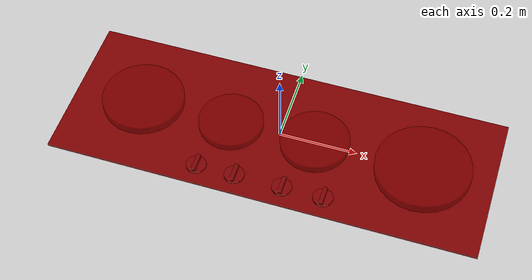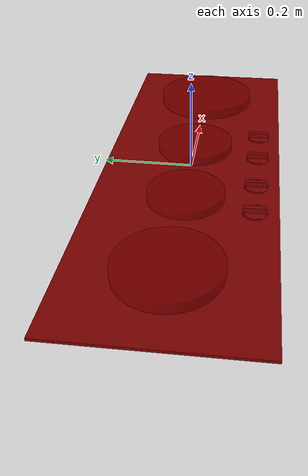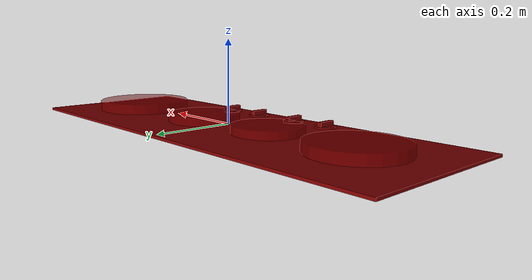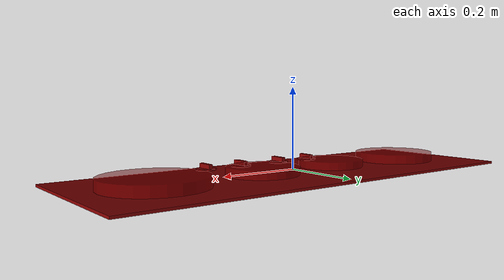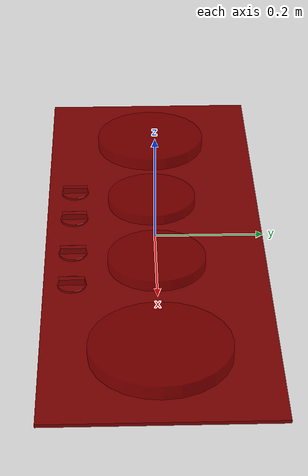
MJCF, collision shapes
<mujoco model="model">
  <compiler angle="radian"/>
  <asset>
    <mesh file="visuals/knob_center_left.obj" name="knob_center_left_vis"/>
    <mesh file="visuals/knob_center_right.obj" name="knob_center_right_vis"/>
    <mesh file="visuals/knob_left.obj" name="knob_left_vis"/>
    <mesh file="visuals/knob_right.obj" name="knob_right_vis"/>
    <mesh file="visuals/Body001.obj" name="Body001_vis"/>
    <texture file="visuals/T_BC001.png" name="Body001_material" type="2d"/>
    <material name="Body001_material" rgba="1 1 1 1.0" texture="Body001_material" shininess="3" specular="3"/>
    <texture file="visuals/T_BC001.png" name="knob_center_left_material" type="2d"/>
    <material name="knob_center_left_material" rgba="1 1 1 1.0" texture="knob_center_left_material" shininess="4" specular="4"/>
    <texture file="visuals/T_BC001.png" name="knob_center_right_material" type="2d"/>
    <material name="knob_center_right_material" rgba="1 1 1 1.0" texture="knob_center_right_material" shininess="4" specular="4"/>
    <texture file="visuals/T_BC001.png" name="knob_left_material" type="2d"/>
    <material name="knob_left_material" rgba="1 1 1 1.0" texture="knob_left_material" shininess="4" specular="4"/>
    <texture file="visuals/T_BC001.png" name="knob_right_material" type="2d"/>
    <material name="knob_right_material" rgba="1 1 1 1.0" texture="knob_right_material" shininess="4" specular="4"/>
  </asset>
  <default>
    <default class="visual">
      <geom conaffinity="0" contype="0" group="1" type="mesh"/>
    </default>
    <default class="collision">
      <geom group="0" rgba="0.5 0 0 0.5"/>
    </default>
    <default class="spawn">
      <geom group="0" rgba="1 1 1 0.5" contype="0" conaffinity="0"/>
      <site group="0" rgba="1 1 1 0.5"/>
    </default>
    <default class="region">
      <geom group="1" conaffinity="0" contype="0" rgba="0 1 0 0"/>
    </default>
  </default>
  <worldbody>
    <body>
      <body name="object">
        <site type="cylinder" rgba="0.5 0 0 0.5" size="0.08278307318687439 0.009517579339444637" pos="-0.12790930271148682 -0.0031520724296569824 0.006037903018295765" name="burner_center_left"/>
        <site type="cylinder" rgba="0.5 0 0 0.5" size="0.1055828258395195 0.012138869613409042" pos="-0.3670654296875 -0.0006356523372232914 0.006037903018295765" name="burner_on_left"/>
        <site type="cylinder" rgba="0.5 0 0 0.5" size="0.08813810348510742 0.010133247822523117" pos="0.09222501516342163 0.0008400166989304125 0.006037903018295765" name="burner_center_right"/>
        <site type="cylinder" rgba="0.5 0 0 0.5" size="0.1211986318230629 0.013934221118688583" pos="0.3691750466823578 0.00022083005751483142 0.006037903018295765" name="burner_on_right"/>
        <geom mesh="Body001_vis" type="mesh" solimp="0.998 0.998 0.001" solref="0.001 1" density="100" friction="0.95 0.3 0.1" class="visual" material="Body001_material"/>
        <geom class="collision" type="box" pos="-0.00012311333557590842 -0.0008124746382236481 -0.008074344135820866" size="0.5473877787590027 0.19988125562667847 0.0029983234126120806" quat="1.0 0.0 0.0 0.0"/>
        <body name="knob_center_left">
          <joint axis="0.0 0.0 1.0" pos="-0.06997084617614746 -0.1499551236629486 0.0007781712338328362" limited="true" name="knob_center_left_joint" range="0.0 3.141592653589793" type="hinge" damping="0.05" armature="0.001"/>
          <geom mesh="knob_center_left_vis" type="mesh" solimp="0.998 0.998 0.001" solref="0.001 1" density="100" friction="0.95 0.3 0.1" class="visual" material="knob_center_left_material"/>
          <geom class="collision" type="cylinder" pos="-0.07009408622980118 -0.15001213550567627 -0.0019390216330066323" size="0.025659240782260895 0.001864419667981565" quat="1.0 0.0 0.0 0.0"/>
          <geom class="collision" type="box" pos="-0.070109523832798 -0.14980120956897736 0.004971570800989866" size="0.0053078774362802505 0.022902363911271095 0.006247436162084341" quat="1.0 0.0 0.0 0.0"/>
        </body>
        <body name="knob_center_right">
          <joint axis="0.0 0.0 1.0" pos="0.05223062261939049 -0.1499551236629486 0.0007781712338328362" limited="true" name="knob_center_right_joint" range="0.0 3.141592653589793" type="hinge" damping="0.05" armature="0.001"/>
          <geom mesh="knob_center_right_vis" type="mesh" solimp="0.998 0.998 0.001" solref="0.001 1" density="100" friction="0.95 0.3 0.1" class="visual" material="knob_center_right_material"/>
          <geom class="collision" type="cylinder" pos="0.05225438252091408 -0.15001213550567627 -0.0019390216330066323" size="0.025659240782260895 0.001864419667981565" quat="1.0 0.0 0.0 0.0"/>
          <geom class="collision" type="box" pos="0.05223894491791725 -0.14980120956897736 0.004971570800989866" size="0.0053078774362802505 0.022902363911271095 0.006247436162084341" quat="1.0 0.0 0.0 0.0"/>
        </body>
        <body name="knob_left">
          <joint axis="0.0 0.0 1.0" pos="-0.16943085193634033 -0.149955153465271 0.0007781712338328362" limited="true" name="knob_left_joint" range="0.0 3.141592653589793" type="hinge" damping="0.05" armature="0.001"/>
          <geom mesh="knob_left_vis" type="mesh" solimp="0.998 0.998 0.001" solref="0.001 1" density="100" friction="0.95 0.3 0.1" class="visual" material="knob_left_material"/>
          <geom class="collision" type="box" pos="-0.16942450404167175 -0.14980120956897736 0.004971570800989866" size="0.0053078774362802505 0.022902363911271095 0.006247436162084341" quat="1.0 0.0 0.0 0.0"/>
          <geom class="collision" type="cylinder" pos="-0.16940906643867493 -0.15001213550567627 -0.0019390216330066323" size="0.025659240782260895 0.001864419667981565" quat="1.0 0.0 0.0 0.0"/>
        </body>
        <body name="knob_right">
          <joint axis="0.0 0.0 1.0" pos="0.15672244131565094 -0.1499551236629486 0.0007781712338328362" limited="true" name="knob_right_joint" range="0.0 3.141592653589793" type="hinge" damping="0.05" armature="0.001"/>
          <geom mesh="knob_right_vis" type="mesh" solimp="0.998 0.998 0.001" solref="0.001 1" density="100" friction="0.95 0.3 0.1" class="visual" material="knob_right_material"/>
          <geom class="collision" type="cylinder" pos="0.15671147406101227 -0.15001213550567627 -0.0019390216330066323" size="0.025659240782260895 0.001864419667981565" quat="1.0 0.0 0.0 0.0"/>
          <geom class="collision" type="box" pos="0.15669603645801544 -0.14980120956897736 0.004971570800989866" size="0.0053078774362802505 0.022902363911271095 0.006247436162084341" quat="1.0 0.0 0.0 0.0"/>
        </body>
        <geom class="region" name="reg_main" type="box" pos="0.0 0.0 -0.00880140345543623" size="0.5475000143051147 0.19999998807907104 0.0023071086034178734"/>
      </body>
    </body>
  </worldbody>
  <actuator>
    <motor name="knob_center_left_joint_actuator" joint="knob_center_left_joint" gear="10"/>
    <motor name="knob_center_right_joint_actuator" joint="knob_center_right_joint" gear="10"/>
    <motor name="knob_left_joint_actuator" joint="knob_left_joint" gear="10"/>
    <motor name="knob_right_joint_actuator" joint="knob_right_joint" gear="10"/>
  </actuator>
</mujoco>
